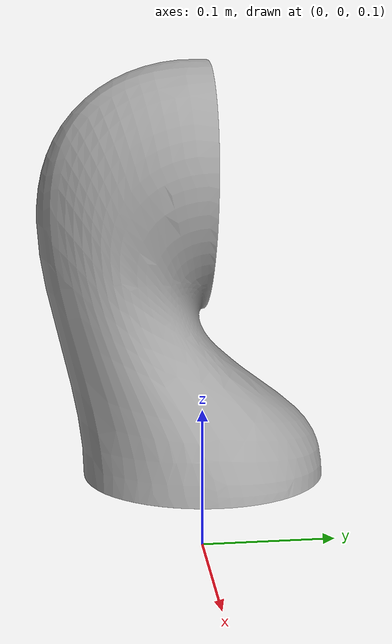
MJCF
<mujoco model="link_1">
  <default>
    <default class="visual">
      <geom group="2" type="mesh" contype="0" conaffinity="0"/>
    </default>
    <default class="collision">
      <geom group="3" type="mesh"/>
    </default>
  </default>
  <asset>
    <material name="gray.006" specular="0.5" shininess="0.25" rgba="0.640000 0.640000 0.640000 1.000000"/>
    <mesh file="link_1.obj"/>
  </asset>
  <worldbody>
    <body name="link_1">
      <geom material="gray.006" mesh="link_1" class="visual"/>
      <geom mesh="link_1" class="collision"/>
    </body>
  </worldbody>
</mujoco>
